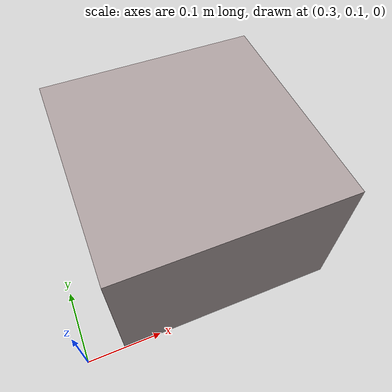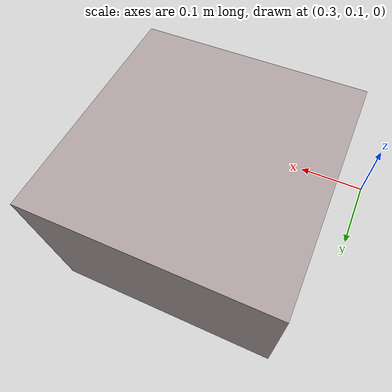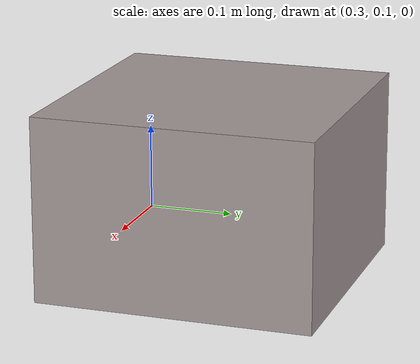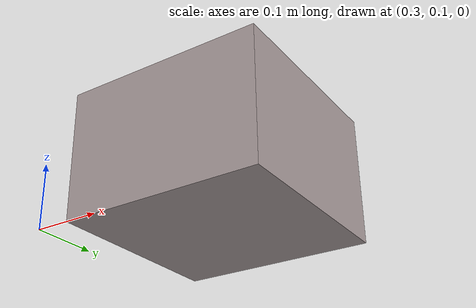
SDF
<?xml version="1.0" ?>
<sdf version="1.5">
  <model name="ra_box">
    <static>True</static>
    <link name="link">
      <collision name="box">
        <pose>0.5 0.25 0.1 0 0 0</pose>
        <geometry>
          <box><size>0.30 0.30 0.20</size></box>
        </geometry>
      </collision>
      <visual name="box">
        <pose>0.5 0.25 0.1 0 0 0</pose>
        <geometry>
          <box><size>0.30 0.30 0.20</size></box>
        </geometry>
        <material>
          <ambient> .6 .55 .55 1</ambient>
          <diffuse>.65 .6  .6  1</diffuse>
          <specular>0.1 0.1 0.1 1</specular>
        </material>
      </visual>
    </link>
  </model>
</sdf>
